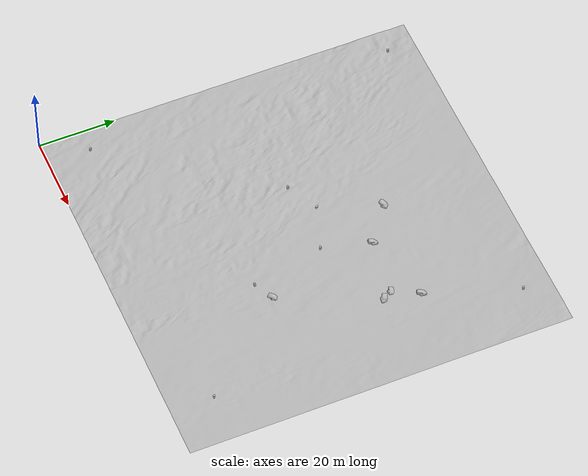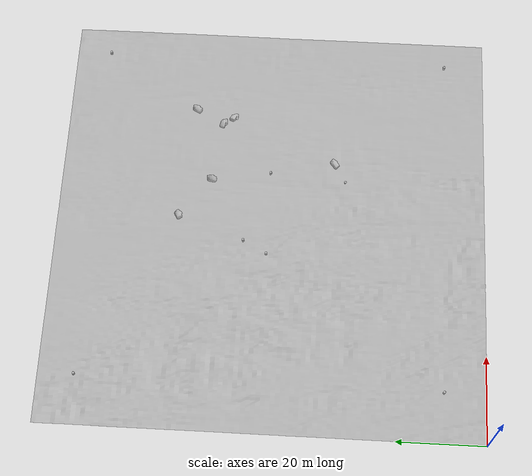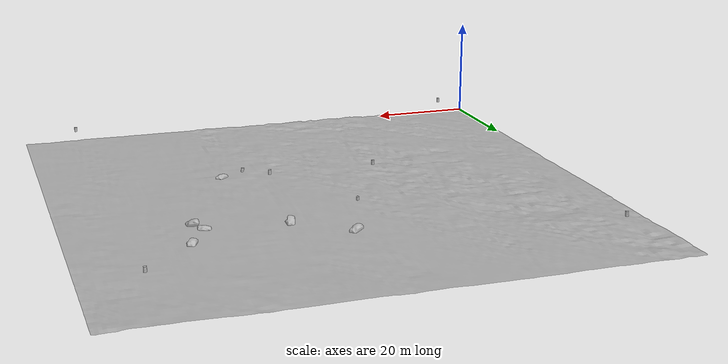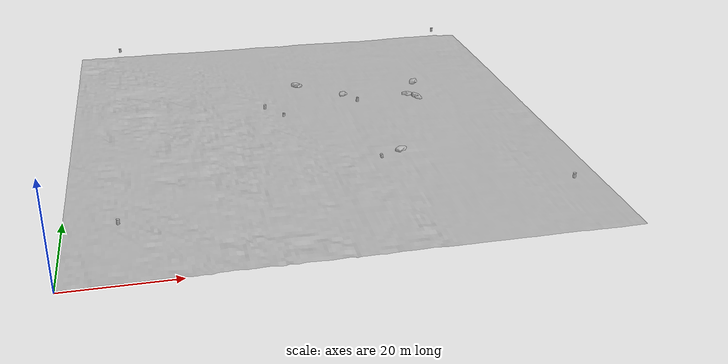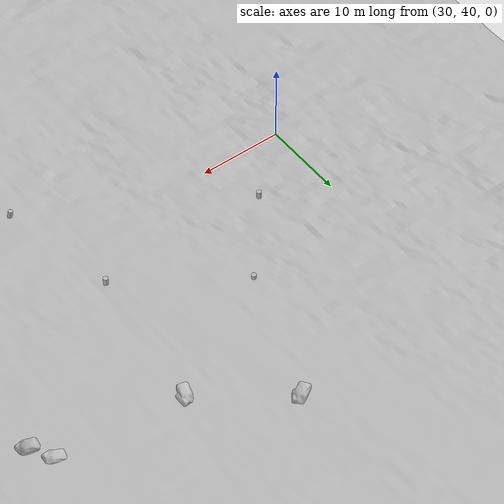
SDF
<sdf version="1.4">
 <world name="default">
  <include><uri>model://sun</uri></include>
  <include><uri>model://srvss_terrain1</uri></include>
  <include><uri>model://barrel1</uri><name>target_barrel_1</name><pose>10 10 5 0 0 0</pose></include>
  <include><uri>model://barrel1</uri><name>target_barrel_2</name><pose>90 10 5 0 0 0</pose></include>
  <include><uri>model://barrel1</uri><name>target_barrel_3</name><pose>10 90 5 0 0 0</pose></include>
  <include><uri>model://barrel1</uri><name>target_barrel_4</name><pose>90 90 5 0 0 0</pose></include>
  <include><uri>model://barrel1</uri><name>target_barrel_5</name><pose>60 50 5 0 0 0</pose></include>
  <include><uri>model://barrel1</uri><name>target_barrel_6</name><pose>40 50 5 0 0 0</pose></include>
  <include>
   <uri>model://rock1</uri>
   <pose>51.1455 71.4138 0.200329 -0.0184248 0.222311 0.507678</pose>
   <scale>1.30243 1.30243 1.30243</scale>
   <name>object0</name>
  </include>
  <include>
   <uri>model://barrel1</uri>
   <pose>44.8679 55.506 0.0972045 -0.0592482 0.161872 0.447378</pose>
   <scale>1.44635 1.44635 1.44635</scale>
   <name>object3</name>
  </include>
  <include>
   <uri>model://rock1</uri>
   <pose>60.2376 64.5886 0.199253 -0.170367 0.225553 1.32519</pose>
   <scale>1.56388 1.56388 1.56388</scale>
   <name>object4</name>
  </include>
  <include>
   <uri>model://rock1</uri>
   <pose>66.0881 35.792 0.207565 0.0931649 -0.139863 0.690391</pose>
   <scale>1.01164 1.01164 1.01164</scale>
   <name>object6</name>
  </include>
  <include>
   <uri>model://rock1</uri>
   <pose>77.2512 59.3973 0.0733006 -0.195998 0.265576 -0.403845</pose>
   <scale>1.25131 1.25131 1.25131</scale>
   <name>object9</name>
  </include>
  <include>
   <uri>model://barrel1</uri>
   <pose>60.8451 32.5315 0.248285 0.20563 -0.119831 -0.86061</pose>
   <scale>1.09955 1.09955 1.09955</scale>
   <name>object11</name>
  </include>
  <include>
   <uri>model://rock1</uri>
   <pose>75.846 61.9328 0.0837772 -0.233584 -0.224082 -0.238458</pose>
   <scale>0.668113 0.668113 0.668113</scale>
   <name>object12</name>
  </include>
  <include>
   <uri>model://rock1</uri>
   <pose>78.8131 69.3839 0.147829 -0.170883 -0.0111275 1.10945</pose>
   <scale>1.92243 1.92243 1.92243</scale>
   <name>object13</name>
  </include>
 </world>
</sdf>

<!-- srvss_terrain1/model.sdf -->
<sdf version="1.4">
    <model name="terrain">
        <static>true</static>
        <link name="terrain1">
            <pose>0 0 0 0 0 0</pose>
            <collision name="terrain1_collision">
                <geometry>
                    <mesh>
                        <uri>model://srvss_terrain1/meshes/terrain1.dae</uri>
                    </mesh>
                </geometry>
		<surface>
		  <friction>
		    <ode>
		      <mu>100</mu>
		      <mu2>100</mu2>
		    </ode>
		  </friction>
		</surface>
            </collision>
            <visual name="terrain1_visual">
                <geometry>
                    <mesh>
                        <uri>model://srvss_terrain1/meshes/terrain1.dae</uri>
                    </mesh>
                </geometry>
                <material>
                    <script>
                        <uri>model://srvss_terrain1/materials/scripts</uri>
                        <uri>model://srvss_terrain1/materials/textures</uri>
                        <name>terrain/terrain1</name>
                    </script>
                </material>
            </visual>
        </link>
    </model>
</sdf>

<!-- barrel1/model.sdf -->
<sdf version="1.4">
  <model name="barrel1">
    <static>true</static>
    <link name="link">
      <collision name="collision">
        <geometry>
          <mesh>
		<uri>model://barrel1/models/barrel1.dae</uri>
          </mesh>
        </geometry>
      </collision>
      <visual name="visual">
         <geometry>
          <mesh>
		<uri>model://barrel1/models/barrel1.dae</uri>
          </mesh>
        </geometry>
      </visual>
    </link>
  </model>
</sdf>

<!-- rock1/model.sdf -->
<sdf version="1.4">
  <model name="rock1">
    <static>true</static>
    <link name="link">
      <collision name="collision">
        <geometry>
          <mesh>
		<uri>model://rock1/models/rock1.dae</uri>
		<scale>1 1 1</scale>
          </mesh>
        </geometry>
      </collision>
      <visual name="visual">
         <geometry>
          <mesh>
		<uri>model://rock1/models/rock1.dae</uri>
		<scale>1 1 1</scale>
          </mesh>
        </geometry>
      </visual>
    </link>
  </model>
</sdf>
